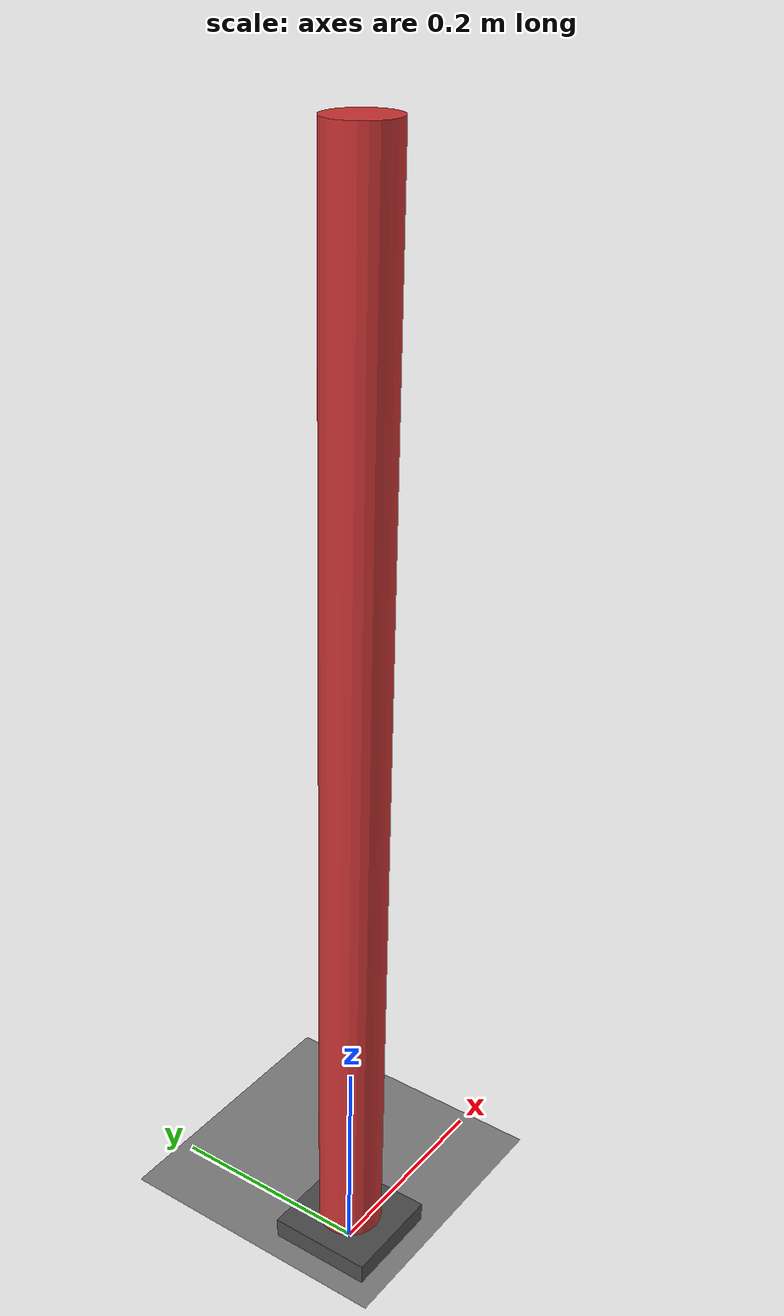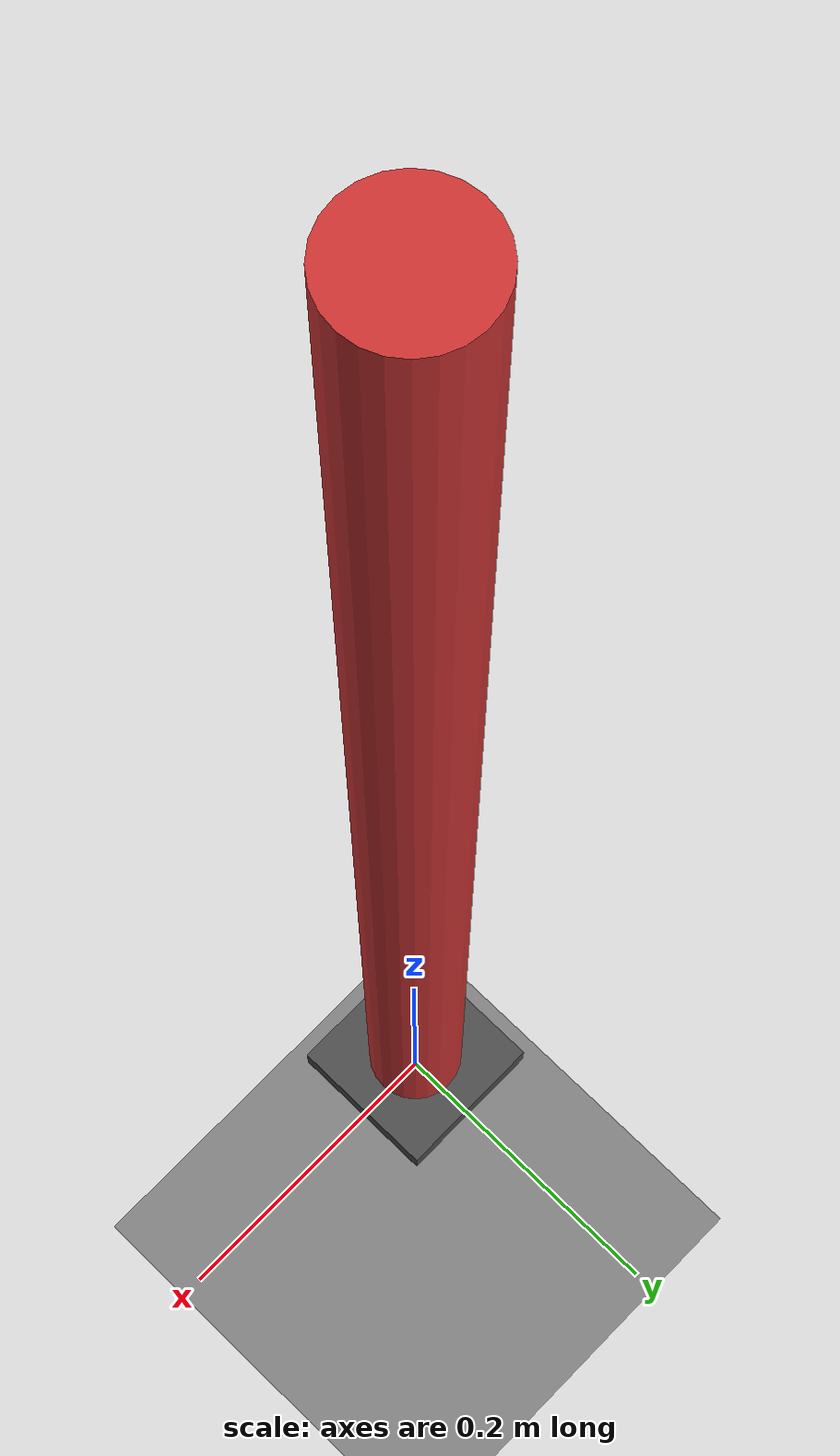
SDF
<sdf version='1.11'>
	<world name='inverted_pendulum_world'>
		<physics name="1ms" type="ignored">
            <max_step_size>0.001</max_step_size>
            <real_time_factor>1.0</real_time_factor>
        </physics>
        <plugin
            filename="gz-sim-physics-system"
            name="gz::sim::systems::Physics">
        </plugin>
        <plugin
            filename="gz-sim-user-commands-system"
            name="gz::sim::systems::UserCommands">
        </plugin>
        <plugin
            filename="gz-sim-scene-broadcaster-system"
            name="gz::sim::systems::SceneBroadcaster">
        </plugin>

		<!-- Controller Plugin-->
		<plugin
			filename="libInvertedPendulumControllerPlugin.so"
			name="ControllerPlugin::InvertedPendulumController">
		</plugin>

		<!-- Rely on Gazebo's default light to avoid duplicate 'sun' name -->
		<!-- Basic environment -->
		<gravity>0 0 -9.81</gravity>
		<!-- Inline ground plane (avoid external model:// dependency) -->
		<model name='ground'>
			<static>true</static>
			<link name='ground_link'>
				<collision name='ground_collision'>
					<geometry>
						<plane>
							<normal>0 0 1</normal>
							<size>100 100</size>
						</plane>
					</geometry>
					<surface>
						<friction>
							<ode>
								<mu>1.0</mu>
								<mu2>1.0</mu2>
							</ode>
						</friction>
					</surface>
				</collision>
				<visual name='ground_visual'>
					<geometry>
						<plane>
							<normal>0 0 1</normal>
							<size>100 100</size>
						</plane>
					</geometry>
					<material>
						<ambient>0.5 0.5 0.5 1</ambient>
						<diffuse>0.5 0.5 0.5 1</diffuse>
					</material>
				</visual>
			</link>
		</model>

		<!-- Explicit directional light while avoiding default 'sun' name conflict -->
		<light type="directional" name="sun_main">
			<cast_shadows>true</cast_shadows>
			<pose>0 0 10 0 0 0</pose>
			<diffuse>0.8 0.8 0.8 1</diffuse>
			<specular>0.2 0.2 0.2 1</specular>
			<attenuation>
				<range>1000</range>
				<constant>0.9</constant>
				<linear>0.01</linear>
				<quadratic>0.001</quadratic>
			</attenuation>
			<direction>-0.5 0.1 -0.9</direction>
		</light>

		<include>
			<uri>/model/inverted_pendulum.sdf</uri>
			<!-- Set the instance name; used below when fixing to world -->
			<name>inverted_pendulum</name>
			<pose>0 0 0.02 0 0 0</pose>
		</include>

		<joint name='fix_base_to_world' type='fixed'>
			<parent>world</parent>
			<child>inverted_pendulum::base</child>
		</joint>
	</world>
</sdf>

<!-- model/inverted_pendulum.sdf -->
<sdf version="1.11">
  <model name="inverted_pendulum">
    <static>false</static>

    <!-- 底座，固定在世界坐标原点 -->
    <link name="base">
      <pose>0 0 0 0 0 0</pose>
      <inertial>
        <mass>100</mass>
        <inertia>
          <ixx>1e-6</ixx><iyy>1e-6</iyy><izz>1e-6</izz>
        </inertia>
      </inertial>
      <collision name="base_collision">
        <geometry>
          <box>
            <size>0 0 0</size>
          </box>
        </geometry>
      </collision>
      <visual name="base_visual">
        <geometry>
          <box>
            <size>0.1 0.1 0.02</size>
          </box>
        </geometry>
        <material>
          <ambient>0.3 0.3 0.3 1</ambient>
        </material>
      </visual>
      <!-- 使底座固定在世界上 -->
      <self_collide>false</self_collide>
      <gravity>false</gravity>
    </link>

    <!-- 摆杆 -->
    <link name="pendulum">
      <pose>0 0 0 0 0 0</pose>
      <inertial>
        <pose>0 0 0.5 0 0 0</pose>
        <mass>1.0</mass>
        <inertia>
          <ixx>0.0836</ixx>
          <iyy>0.0836</iyy>
          <izz>0.00045</izz>
        </inertia>
      </inertial>
      <collision name="pendulum_collision">
        <pose>0 0 0.5 0 0 0</pose>
        <geometry>
          <cylinder>
            <radius>0.03</radius>
            <length>1.0</length>
          </cylinder>
        </geometry>
      </collision>
      <visual name="pendulum_visual">
        <pose>0 0 0.5 0 0 0</pose>
        <geometry>
          <cylinder>
            <radius>0.03</radius>
            <length>1.0</length>
          </cylinder>
        </geometry>
        <material>
          <ambient>0.8 0.2 0.2 1</ambient>
          <diffuse>0.8 0.2 0.2 1</diffuse>
        </material>
      </visual>
    </link>

    <!-- 连接底座和摆杆的关节 -->
    <joint name="pivot_joint" type="revolute">
      <parent>base</parent>
      <child>pendulum</child>
      <pose>0 0 0 0 0 0</pose>
      <axis>
        <xyz>0 1 0</xyz>
        <limit>
          <lower>-3.14</lower>
          <upper>3.14</upper>
        </limit>
        <dynamics>
          <damping>0.01</damping>
        </dynamics>
      </axis>
    </joint>
  </model>
</sdf>
